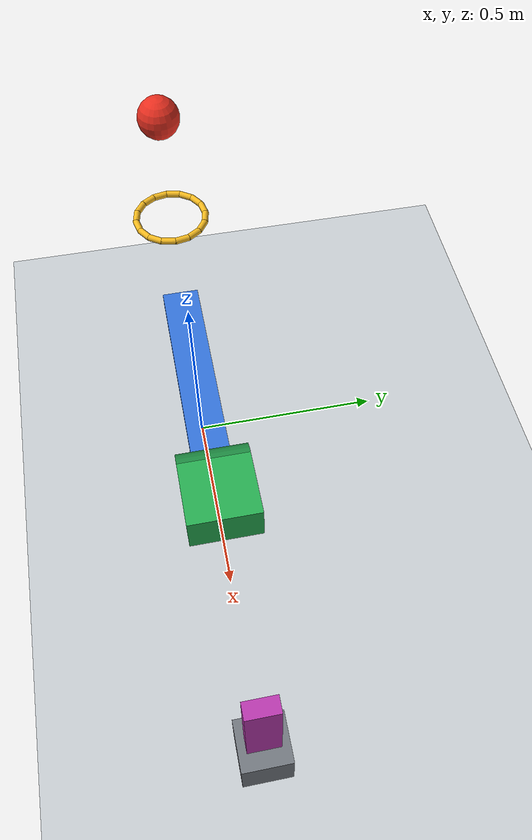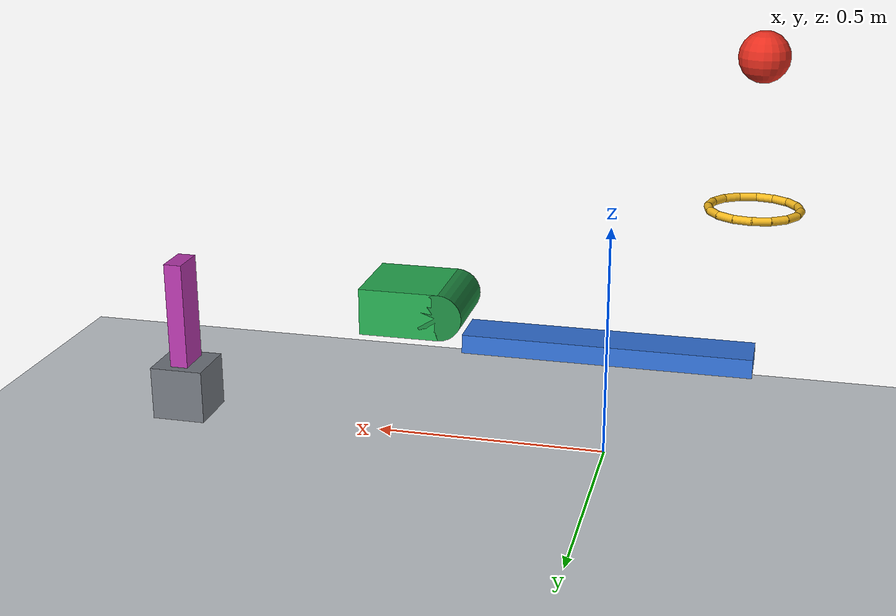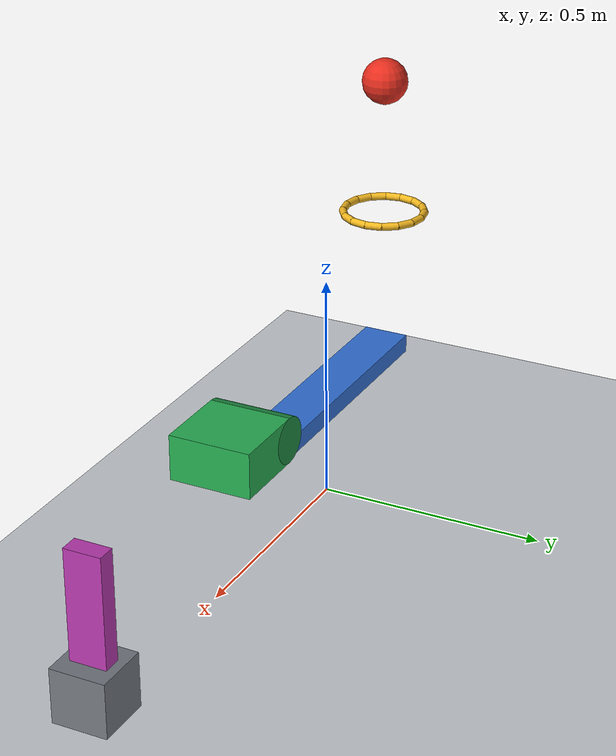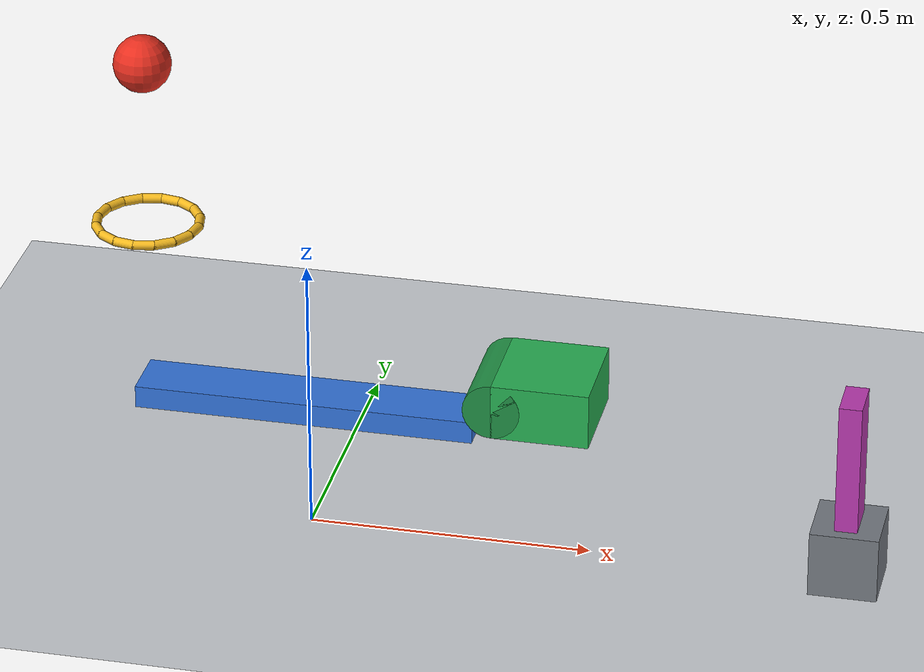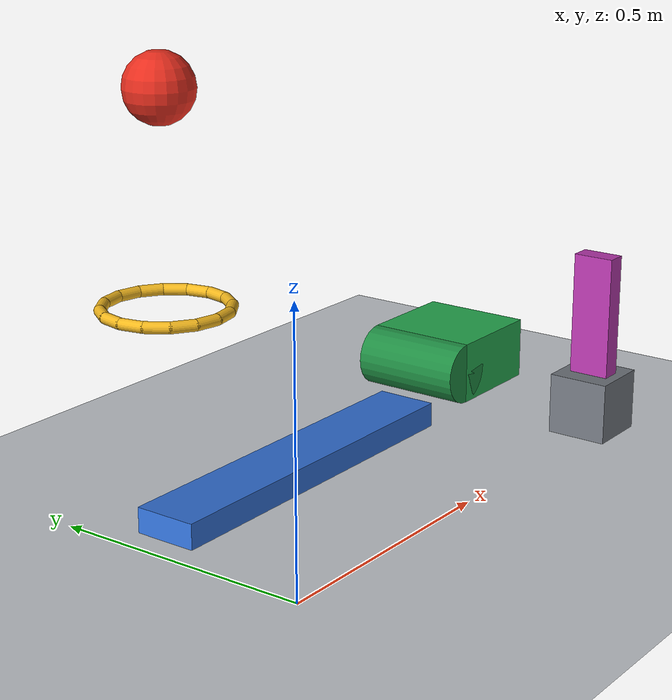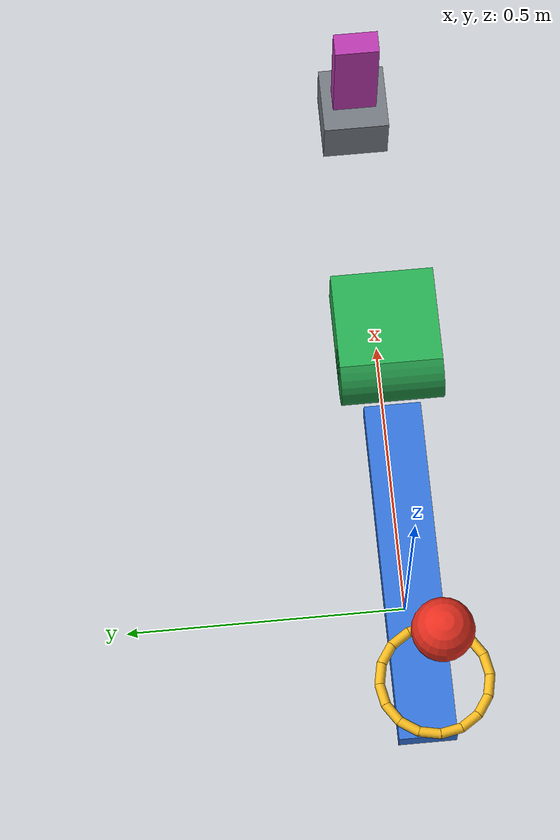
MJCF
<mujoco model="ball_ring_lever_cart_domino">
  <compiler angle="degree" autolimits="true"/>
  <option timestep="0.002" gravity="0 0 -9.81" integrator="implicitfast" cone="elliptic" iterations="100"/>
  <size njmax="1000" nconmax="300"/>

  <!-- MuJoCo has no direct restitution coefficient. The contact damping ratio below approximates restitution 0.04; actual rebound depends on impact conditions. -->
  <!-- All initial velocities are zero. No actuators or prescribed motion are used. -->
  <!-- Ring-plane and ball-center heights give a 0.30 m initial drop to the ring, followed by 0.25 m to first lever contact. -->

  <worldbody>
    <light name="overhead_light" pos="0 -1 3" dir="0 0 -1"/>
    <camera name="overview" pos="1.6 -2.6 1.5" xyaxes="0.852 0.524 0 -0.207 0.337 0.918"/>

    <geom name="floor" type="plane" size="3 2 0.1" friction="0.72 0.005 0.001" condim="6" solref="0.006 0.7156" rgba="0.78 0.80 0.82 1"/>

    <body name="ball1" pos="-0.28 0 0.86">
      <freejoint name="ball1_free"/>
      <geom name="ball1_sphere" type="sphere" size="0.05" mass="0.20" friction="0.72 0.005 0.001" condim="6" solref="0.006 0.7156" rgba="0.90 0.18 0.12 1"/>
    </body>

    <!-- Sixteen capsule segments form a horizontal ring with 0.16 m minimum clear diameter. -->
    <body name="ring1" pos="-0.28 0 0.56">
      <geom name="ring1_segment01" type="capsule" fromto="0.09 0 0 0.08314916 0.03444151 0" size="0.00827068" friction="0.72 0.005 0.001" condim="6" solref="0.006 0.7156" rgba="0.95 0.72 0.12 1"/>
      <geom name="ring1_segment02" type="capsule" fromto="0.08314916 0.03444151 0 0.06363961 0.06363961 0" size="0.00827068" friction="0.72 0.005 0.001" condim="6" solref="0.006 0.7156" rgba="0.95 0.72 0.12 1"/>
      <geom name="ring1_segment03" type="capsule" fromto="0.06363961 0.06363961 0 0.03444151 0.08314916 0" size="0.00827068" friction="0.72 0.005 0.001" condim="6" solref="0.006 0.7156" rgba="0.95 0.72 0.12 1"/>
      <geom name="ring1_segment04" type="capsule" fromto="0.03444151 0.08314916 0 0 0.09 0" size="0.00827068" friction="0.72 0.005 0.001" condim="6" solref="0.006 0.7156" rgba="0.95 0.72 0.12 1"/>
      <geom name="ring1_segment05" type="capsule" fromto="0 0.09 0 -0.03444151 0.08314916 0" size="0.00827068" friction="0.72 0.005 0.001" condim="6" solref="0.006 0.7156" rgba="0.95 0.72 0.12 1"/>
      <geom name="ring1_segment06" type="capsule" fromto="-0.03444151 0.08314916 0 -0.06363961 0.06363961 0" size="0.00827068" friction="0.72 0.005 0.001" condim="6" solref="0.006 0.7156" rgba="0.95 0.72 0.12 1"/>
      <geom name="ring1_segment07" type="capsule" fromto="-0.06363961 0.06363961 0 -0.08314916 0.03444151 0" size="0.00827068" friction="0.72 0.005 0.001" condim="6" solref="0.006 0.7156" rgba="0.95 0.72 0.12 1"/>
      <geom name="ring1_segment08" type="capsule" fromto="-0.08314916 0.03444151 0 -0.09 0 0" size="0.00827068" friction="0.72 0.005 0.001" condim="6" solref="0.006 0.7156" rgba="0.95 0.72 0.12 1"/>
      <geom name="ring1_segment09" type="capsule" fromto="-0.09 0 0 -0.08314916 -0.03444151 0" size="0.00827068" friction="0.72 0.005 0.001" condim="6" solref="0.006 0.7156" rgba="0.95 0.72 0.12 1"/>
      <geom name="ring1_segment10" type="capsule" fromto="-0.08314916 -0.03444151 0 -0.06363961 -0.06363961 0" size="0.00827068" friction="0.72 0.005 0.001" condim="6" solref="0.006 0.7156" rgba="0.95 0.72 0.12 1"/>
      <geom name="ring1_segment11" type="capsule" fromto="-0.06363961 -0.06363961 0 -0.03444151 -0.08314916 0" size="0.00827068" friction="0.72 0.005 0.001" condim="6" solref="0.006 0.7156" rgba="0.95 0.72 0.12 1"/>
      <geom name="ring1_segment12" type="capsule" fromto="-0.03444151 -0.08314916 0 0 -0.09 0" size="0.00827068" friction="0.72 0.005 0.001" condim="6" solref="0.006 0.7156" rgba="0.95 0.72 0.12 1"/>
      <geom name="ring1_segment13" type="capsule" fromto="0 -0.09 0 0.03444151 -0.08314916 0" size="0.00827068" friction="0.72 0.005 0.001" condim="6" solref="0.006 0.7156" rgba="0.95 0.72 0.12 1"/>
      <geom name="ring1_segment14" type="capsule" fromto="0.03444151 -0.08314916 0 0.06363961 -0.06363961 0" size="0.00827068" friction="0.72 0.005 0.001" condim="6" solref="0.006 0.7156" rgba="0.95 0.72 0.12 1"/>
      <geom name="ring1_segment15" type="capsule" fromto="0.06363961 -0.06363961 0 0.08314916 -0.03444151 0" size="0.00827068" friction="0.72 0.005 0.001" condim="6" solref="0.006 0.7156" rgba="0.95 0.72 0.12 1"/>
      <geom name="ring1_segment16" type="capsule" fromto="0.08314916 -0.03444151 0 0.09 0 0" size="0.00827068" friction="0.72 0.005 0.001" condim="6" solref="0.006 0.7156" rgba="0.95 0.72 0.12 1"/>
    </body>

    <!-- Positive hinge rotation lowers the left end and raises the right end. The 45-degree limit is the lower stop. -->
    <body name="lever1" pos="0 0 0.24">
      <joint name="lever1_hinge" type="hinge" pos="0 0 0" axis="0 -1 0" damping="0.04" limited="true" range="0 45" solreflimit="0.006 0.7156"/>
      <geom name="lever1_bar" type="box" size="0.30 0.05 0.02" mass="0.50" friction="0.72 0.005 0.001" condim="6" solref="0.006 0.7156" rgba="0.20 0.45 0.85 1"/>
    </body>

    <!-- The rounded left nose converts the rising lever tip's impact into positive horizontal motion. -->
    <!-- The cart's total envelope is 0.22 by 0.18 by 0.10 m; its two geoms total 0.50 kg. -->
    <body name="cart1" pos="0.402115295 0 0.307865112">
      <joint name="cart1_slide" type="slide" axis="1 0 0" damping="0.20" limited="true" range="0 0.46" solreflimit="0.006 0.7156"/>
      <geom name="cart1_chassis" type="box" pos="0.025 0 0" size="0.085 0.09 0.05" mass="0.38" friction="0.72 0.005 0.001" condim="6" solref="0.006 0.7156" rgba="0.15 0.68 0.32 1"/>
      <geom name="cart1_rounded_nose" type="cylinder" pos="-0.06 0 0" quat="0.707106781 0.707106781 0 0" size="0.05 0.09" mass="0.12" friction="0.72 0.005 0.001" condim="6" solref="0.006 0.7156" rgba="0.12 0.55 0.26 1"/>
    </body>

    <!-- A fixed 0.12 m support cube puts the domino in the cart's striking-height band. -->
    <body name="block1" pos="0.952115295 0 0.06">
      <geom name="block1_cube" type="box" size="0.06 0.06 0.06" mass="0.35" friction="0.72 0.005 0.001" condim="6" solref="0.006 0.7156" rgba="0.45 0.47 0.50 1"/>
    </body>

    <!-- The domino's near face is exactly 0.42 m beyond the cart's initial front face. -->
    <body name="domino1" pos="0.952115295 0 0.24" quat="0.707106781 0 0 0.707106781">
      <freejoint name="domino1_free"/>
      <geom name="domino1_box" type="box" size="0.04 0.02 0.12" mass="0.25" friction="0.72 0.005 0.001" condim="6" solref="0.006 0.7156" rgba="0.72 0.22 0.68 1"/>
    </body>
  </worldbody>

  <keyframe>
    <key name="start" qpos="-0.28 0 0.86 1 0 0 0 0 0 0.952115295 0 0.24 0.707106781 0 0 0.707106781" qvel="0 0 0 0 0 0 0 0 0 0 0 0 0 0"/>
  </keyframe>
</mujoco>
